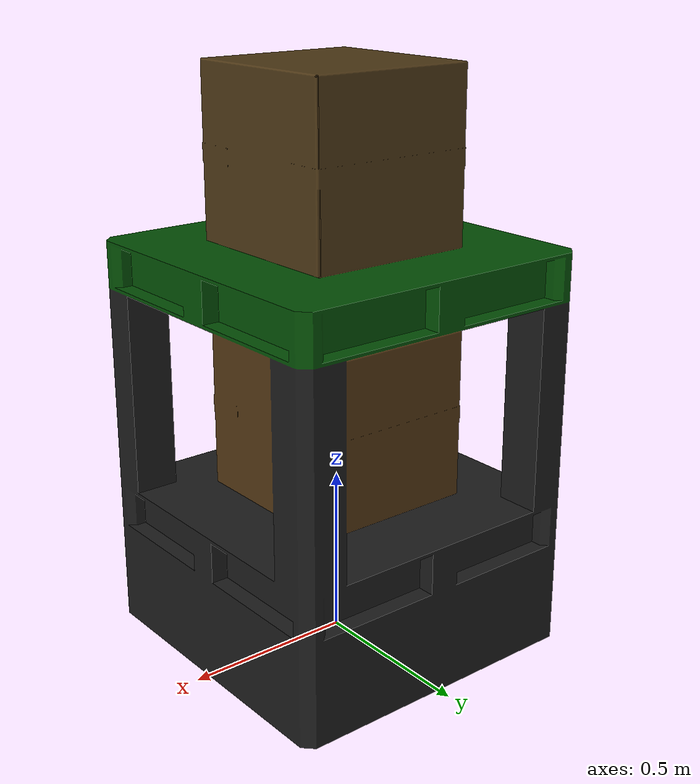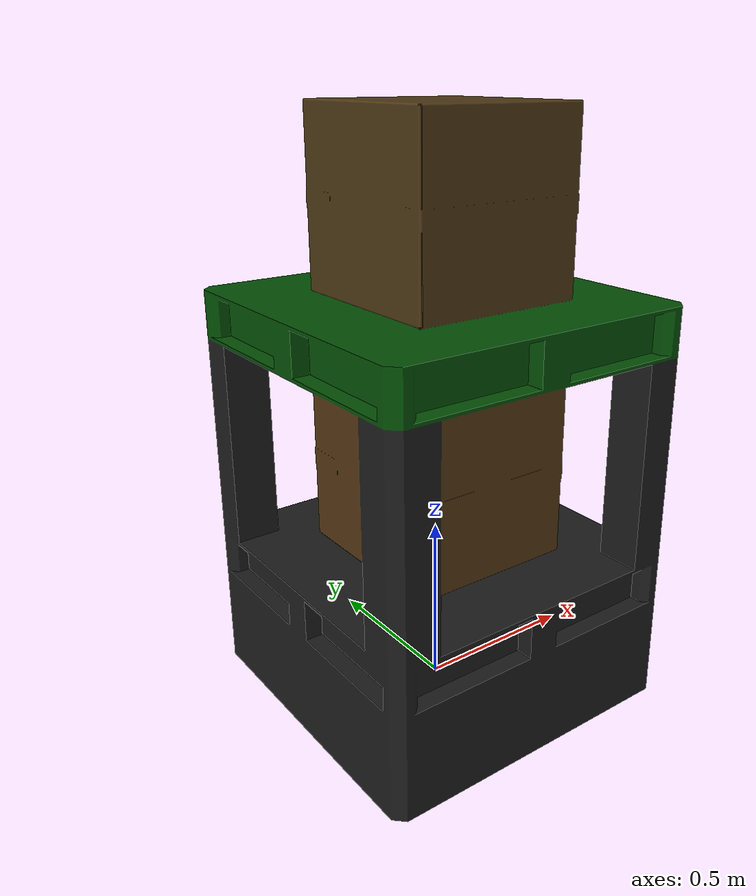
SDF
<?xml version="1.0" ?>
<sdf version="1.6">
  <model name="two_plate_big_new">
    <link name="My_map">
      <inertial>
        <mass>0.1</mass>
      </inertial>
      <collision name="collision">
        <geometry>
          <mesh>
            <uri>model://two_plate_big_new/meshes/two_plate_big_new.dae</uri>
            <scale>0.01 0.01 0.01</scale>
          </mesh>
        </geometry>
      </collision>
      <visual name="map_visual">
        <geometry>
          <mesh>
            <uri>model://two_plate_big_new/meshes/two_plate_big_new.dae</uri>
            <scale>0.01 0.01 0.01</scale>
          </mesh>
        </geometry>
      </visual>
    </link>
  </model>
</sdf>
